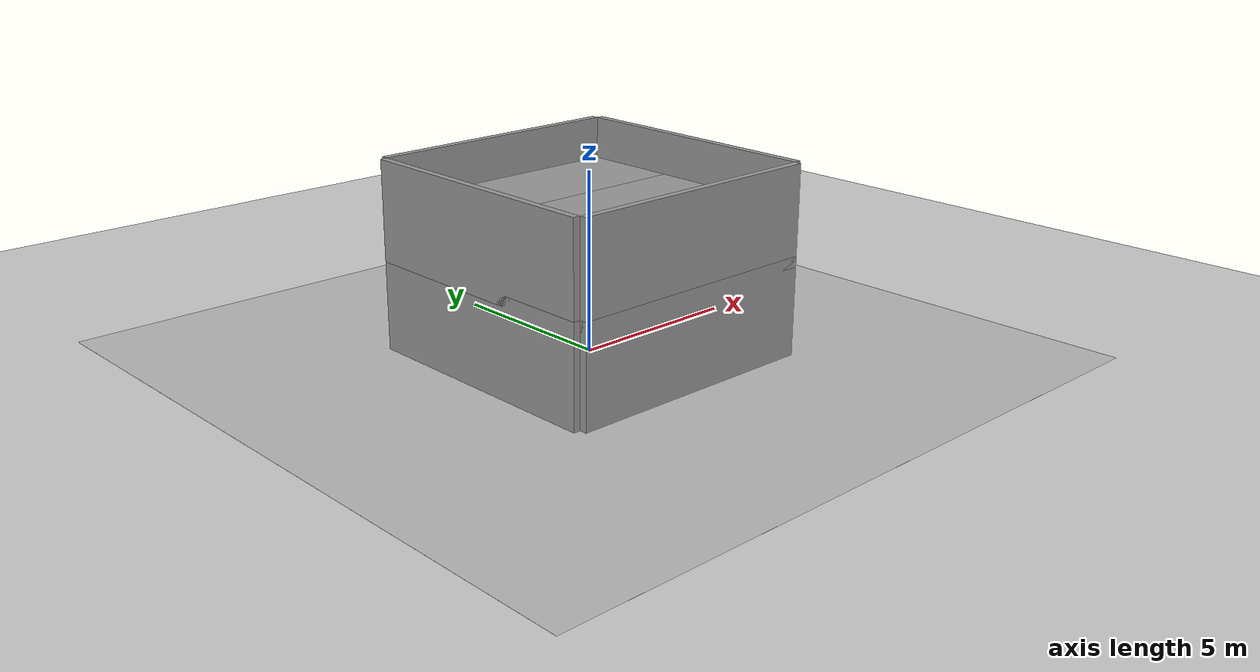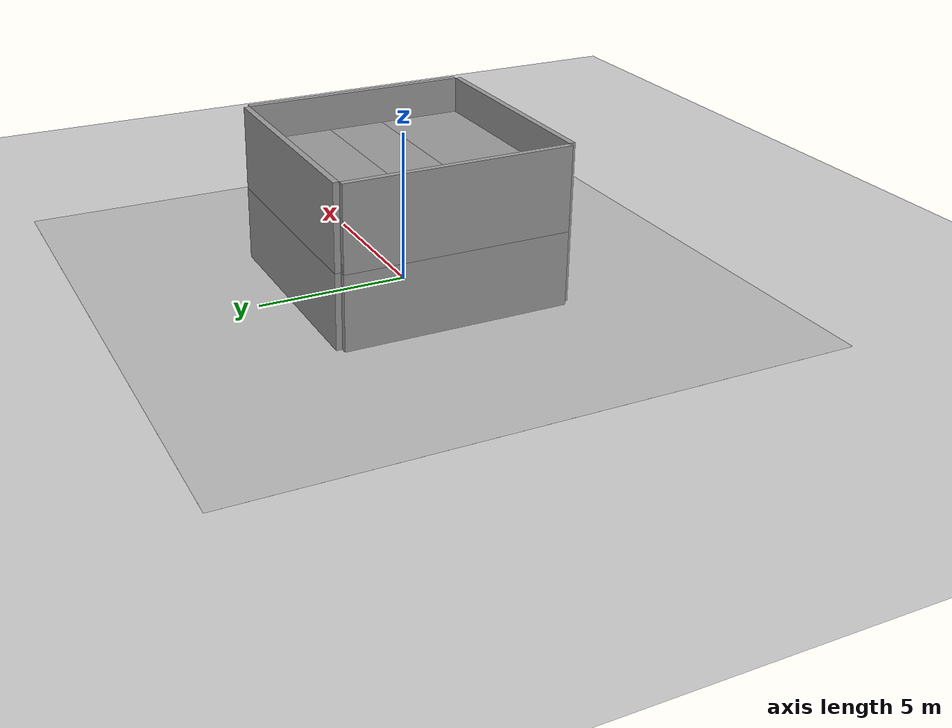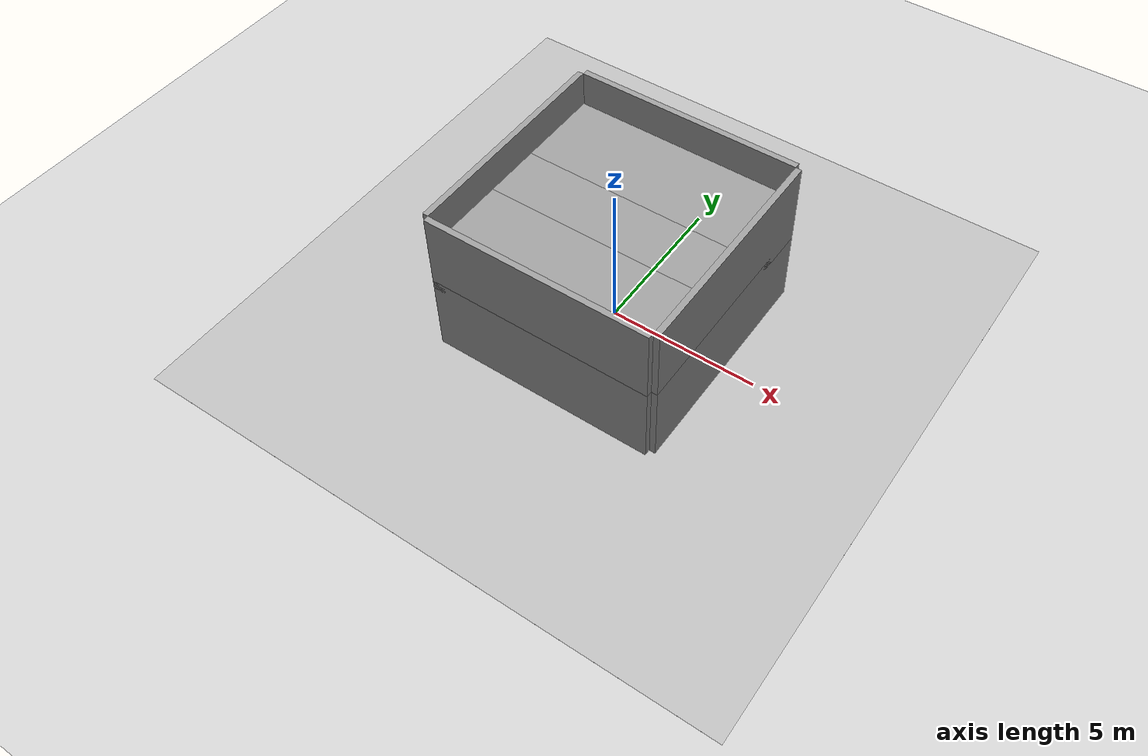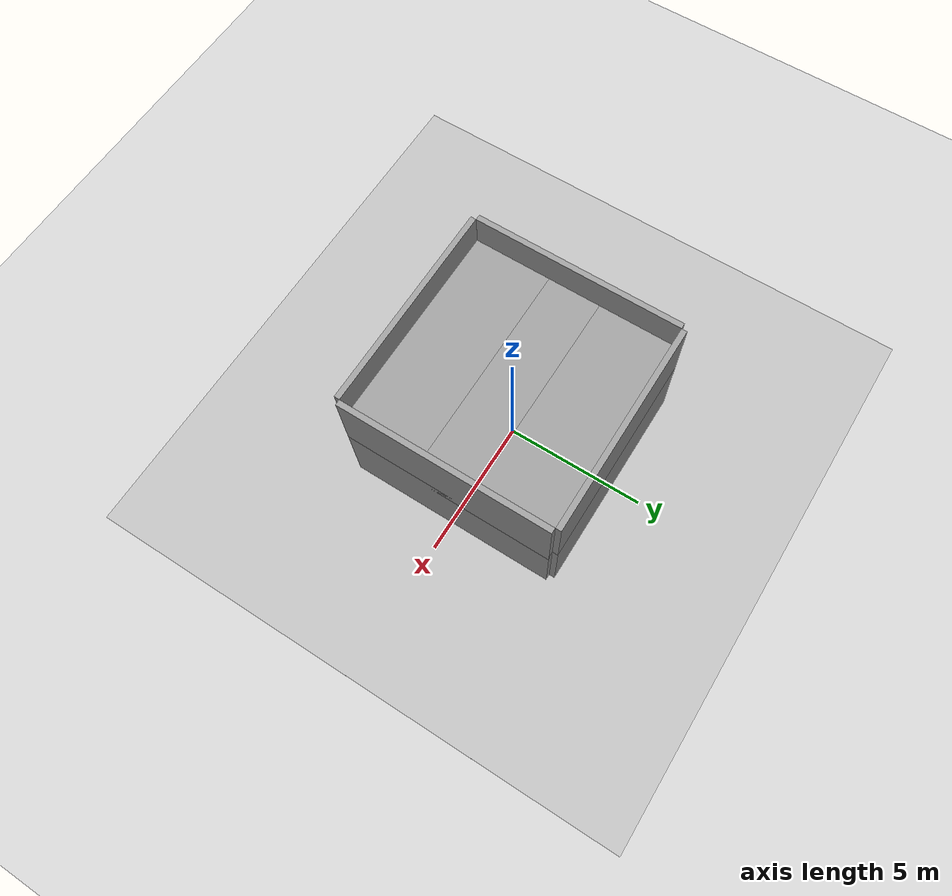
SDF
<sdf version="1.6">
 <world name="default">
  <model name="ground_plane">
   <static>1</static>
   <link name="link">
    <collision name="collision">
     <geometry><plane><normal>0 0 1</normal><size>100 100</size></plane></geometry>
     <surface><friction><ode><mu>100</mu><mu2>50</mu2></ode></friction></surface>
    </collision>
    <visual name="visual">
     <cast_shadows>0</cast_shadows>
     <geometry><plane><normal>0 0 1</normal><size>100 100</size></plane></geometry>
     <material>
      <script><uri>file://media/materials/scripts/gazebo.material</uri><name>Gazebo/Grey</name></script>
     </material>
    </visual>
   </link>
  </model>
  <gravity>0 0 -9.8</gravity>
  <magnetic_field>6e-06 2.3e-05 -4.2e-05</magnetic_field>
  <atmosphere type="adiabatic"/>
  <physics name="default_physics" default="0" type="ode">
   <max_step_size>0.001</max_step_size>
   <real_time_factor>1</real_time_factor>
   <real_time_update_rate>1000</real_time_update_rate>
  </physics>
  <scene><ambient>0.4 0.4 0.4 1</ambient><background>0.7 0.7 0.7 1</background><shadows>1</shadows></scene>
  <spherical_coordinates>
   <surface_model>EARTH_WGS84</surface_model>
   <latitude_deg>0</latitude_deg>
   <longitude_deg>0</longitude_deg>
   <elevation>0</elevation>
   <heading_deg>0</heading_deg>
  </spherical_coordinates>
  <model name="Floor_room">
   <link name="main">
    <pose>0 0 0.01 0 -0 0</pose>
    <collision name="main_Collision"><geometry><box><size>20 20 0.001</size></box></geometry></collision>
    <visual name="main_Visual">
     <geometry><box><size>20 20 0.001</size></box></geometry>
     <material>
      <script>
       <uri>model://Floor_room/materials/scripts</uri>
       <uri>model://Floor_room/materials/textures</uri>
       <name>floor_room</name>
      </script>
     </material>
    </visual>
   </link>
   <static>1</static>
  </model>
  <model name="grey_wall">
   <static>1</static>
   <link name="link">
    <pose>0 0 1.4 0 -0 0</pose>
    <collision name="collision"><geometry><box><size>7.5 0.2 2.8</size></box></geometry></collision>
    <visual name="visual">
     <cast_shadows>0</cast_shadows>
     <geometry><box><size>7.5 0.2 2.8</size></box></geometry>
     <material>
      <script>
       <uri>model://grey_wall/materials/scripts</uri>
       <uri>model://grey_wall/materials/textures</uri>
       <name>vrc/grey_wall</name>
      </script>
     </material>
    </visual>
   </link>
   <pose>0 -3.85 0 0 -0 0</pose>
  </model>
  <model name="grey_wall_0">
   <static>1</static>
   <link name="link">
    <pose>0 0 1.4 0 -0 0</pose>
    <collision name="collision"><geometry><box><size>7.5 0.2 2.8</size></box></geometry></collision>
    <visual name="visual">
     <cast_shadows>0</cast_shadows>
     <geometry><box><size>7.5 0.2 2.8</size></box></geometry>
     <material>
      <script>
       <uri>model://grey_wall/materials/scripts</uri>
       <uri>model://grey_wall/materials/textures</uri>
       <name>vrc/grey_wall</name>
      </script>
     </material>
    </visual>
   </link>
   <pose>0 3.85 0 0 -0 0</pose>
  </model>
  <model name="grey_wall_1">
   <static>1</static>
   <link name="link">
    <pose>0 0 1.4 0 -0 0</pose>
    <collision name="collision"><geometry><box><size>7.5 0.2 2.8</size></box></geometry></collision>
    <visual name="visual">
     <cast_shadows>0</cast_shadows>
     <geometry><box><size>7.5 0.2 2.8</size></box></geometry>
     <material>
      <script>
       <uri>model://grey_wall/materials/scripts</uri>
       <uri>model://grey_wall/materials/textures</uri>
       <name>vrc/grey_wall</name>
      </script>
     </material>
    </visual>
   </link>
   <pose>3.85 0 0 0 -0 1.57096</pose>
  </model>
  <model name="grey_wall_2">
   <static>1</static>
   <link name="link">
    <pose>0 0 1.4 0 -0 0</pose>
    <collision name="collision"><geometry><box><size>7.5 0.2 2.8</size></box></geometry></collision>
    <visual name="visual">
     <cast_shadows>0</cast_shadows>
     <geometry><box><size>7.5 0.2 2.8</size></box></geometry>
     <material>
      <script>
       <uri>model://grey_wall/materials/scripts</uri>
       <uri>model://grey_wall/materials/textures</uri>
       <name>vrc/grey_wall</name>
      </script>
     </material>
    </visual>
   </link>
   <pose>-3.85 0 0 0 -0 1.57096</pose>
  </model>
  <light name="user_directional_light_0" type="directional">
   <pose>1.90703 1.7116 1 0 -0 0</pose>
   <diffuse>0.5 0.5 0.5 1</diffuse>
   <specular>0.1 0.1 0.1 1</specular>
   <direction>0.1 0.1 -0.9</direction>
   <attenuation>
    <range>20</range>
    <constant>0.5</constant>
    <linear>0.01</linear>
    <quadratic>0.001</quadratic>
   </attenuation>
  </light>
  <light name="user_spot_light_0" type="spot">
   <pose>0.589804 2.02287 1 0 -0 0</pose>
   <diffuse>0.5 0.5 0.5 1</diffuse>
   <specular>0.1 0.1 0.1 1</specular>
   <direction>0 0 -1</direction>
   <attenuation>
    <range>20</range>
    <constant>0.5</constant>
    <linear>0.01</linear>
    <quadratic>0.001</quadratic>
   </attenuation>
   <cast_shadows>0</cast_shadows>
   <spot><inner_angle>0.6</inner_angle><outer_angle>1</outer_angle><falloff>1</falloff></spot>
  </light>
  <model name="grey_wall_3">
   <static>1</static>
   <link name="link">
    <pose>0 0 1.4 0 -0 0</pose>
    <collision name="collision"><geometry><box><size>7.5 0.2 2.8</size></box></geometry></collision>
    <visual name="visual">
     <cast_shadows>0</cast_shadows>
     <geometry><box><size>7.5 0.2 2.8</size></box></geometry>
     <material>
      <script>
       <uri>model://grey_wall/materials/scripts</uri>
       <uri>model://grey_wall/materials/textures</uri>
       <name>vrc/grey_wall</name>
      </script>
     </material>
    </visual>
   </link>
   <pose>0 3.75 4 1.5708 -0 0</pose>
  </model>
  <model name="grey_wall_4">
   <static>1</static>
   <link name="link">
    <pose>0 0 1.4 0 -0 0</pose>
    <collision name="collision"><geometry><box><size>7.5 0.2 2.8</size></box></geometry></collision>
    <visual name="visual">
     <cast_shadows>0</cast_shadows>
     <geometry><box><size>7.5 0.2 2.8</size></box></geometry>
     <material>
      <script>
       <uri>model://grey_wall/materials/scripts</uri>
       <uri>model://grey_wall/materials/textures</uri>
       <name>vrc/grey_wall</name>
      </script>
     </material>
    </visual>
   </link>
   <pose>0 0.95 4 1.5708 -0 0</pose>
  </model>
  <model name="grey_wall_5">
   <static>1</static>
   <link name="link">
    <pose>0 0 1.4 0 -0 0</pose>
    <collision name="collision"><geometry><box><size>7.5 0.2 2.8</size></box></geometry></collision>
    <visual name="visual">
     <cast_shadows>0</cast_shadows>
     <geometry><box><size>7.5 0.2 2.8</size></box></geometry>
     <material>
      <script>
       <uri>model://grey_wall/materials/scripts</uri>
       <uri>model://grey_wall/materials/textures</uri>
       <name>vrc/grey_wall</name>
      </script>
     </material>
    </visual>
   </link>
   <pose>0 -0.95 4 1.5708 -0 0</pose>
  </model>
  <light name="user_spot_light_0_clone" type="spot">
   <pose>-0.383938 -1.13491 1.23081 0 -0 0</pose>
   <diffuse>0.5 0.5 0.5 1</diffuse>
   <specular>0.1 0.1 0.1 1</specular>
   <direction>0 0 -1</direction>
   <attenuation>
    <range>20</range>
    <constant>0.5</constant>
    <linear>0.01</linear>
    <quadratic>0.001</quadratic>
   </attenuation>
   <cast_shadows>0</cast_shadows>
   <spot><inner_angle>0.6</inner_angle><outer_angle>1</outer_angle><falloff>1</falloff></spot>
  </light>
  <light name="user_spot_light_0_clone_1" type="spot">
   <pose>0.615848 -0.668756 1.23081 0 -0 0</pose>
   <diffuse>0.5 0.5 0.5 1</diffuse>
   <specular>0.1 0.1 0.1 1</specular>
   <direction>0 0 -1</direction>
   <attenuation>
    <range>20</range>
    <constant>0.5</constant>
    <linear>0.01</linear>
    <quadratic>0.001</quadratic>
   </attenuation>
   <cast_shadows>0</cast_shadows>
   <spot><inner_angle>0.6</inner_angle><outer_angle>1</outer_angle><falloff>1</falloff></spot>
  </light>
  <light name="user_spot_light_0_clone_0" type="spot">
   <pose>-0.706863 -0.391915 1.23081 0 -0 0</pose>
   <diffuse>0.498039 0.498039 0.498039 1</diffuse>
   <specular>0.0980392 0.0980392 0.0980392 1</specular>
   <direction>0 0 -1</direction>
   <attenuation>
    <range>20</range>
    <constant>0.5</constant>
    <linear>0.01</linear>
    <quadratic>0.001</quadratic>
   </attenuation>
   <cast_shadows>0</cast_shadows>
   <spot><inner_angle>0.6</inner_angle><outer_angle>1</outer_angle><falloff>1</falloff></spot>
  </light>
  <model name="grey_wall_clone">
   <static>1</static>
   <link name="link">
    <pose>0 0 1.4 0 -0 0</pose>
    <collision name="collision"><geometry><box><size>7.5 0.2 2.8</size></box></geometry></collision>
    <visual name="visual">
     <cast_shadows>0</cast_shadows>
     <geometry><box><size>7.5 0.2 2.8</size></box></geometry>
     <material>
      <script>
       <uri>model://grey_wall/materials/scripts</uri>
       <uri>model://grey_wall/materials/textures</uri>
       <name>vrc/grey_wall</name>
      </script>
     </material>
    </visual>
   </link>
   <pose>0 -3.85 2.5 0 -0 0</pose>
  </model>
  <model name="grey_wall_1_clone">
   <static>1</static>
   <link name="link">
    <pose>0 0 1.4 0 -0 0</pose>
    <collision name="collision"><geometry><box><size>7.5 0.2 2.8</size></box></geometry></collision>
    <visual name="visual">
     <cast_shadows>0</cast_shadows>
     <geometry><box><size>7.5 0.2 2.8</size></box></geometry>
     <material>
      <script>
       <uri>model://grey_wall/materials/scripts</uri>
       <uri>model://grey_wall/materials/textures</uri>
       <name>vrc/grey_wall</name>
      </script>
     </material>
    </visual>
   </link>
   <pose>3.85 0 2.5 0 -0 1.57096</pose>
  </model>
  <model name="grey_wall_0_clone">
   <static>1</static>
   <link name="link">
    <pose>0 0 1.4 0 -0 0</pose>
    <collision name="collision"><geometry><box><size>7.5 0.2 2.8</size></box></geometry></collision>
    <visual name="visual">
     <cast_shadows>0</cast_shadows>
     <geometry><box><size>7.5 0.2 2.8</size></box></geometry>
     <material>
      <script>
       <uri>model://grey_wall/materials/scripts</uri>
       <uri>model://grey_wall/materials/textures</uri>
       <name>vrc/grey_wall</name>
      </script>
     </material>
    </visual>
   </link>
   <pose>0 3.85 2.5 0 -0 0</pose>
  </model>
  <model name="grey_wall_2_clone">
   <static>1</static>
   <link name="link">
    <pose>0 0 1.4 0 -0 0</pose>
    <collision name="collision"><geometry><box><size>7.5 0.2 2.8</size></box></geometry></collision>
    <visual name="visual">
     <cast_shadows>0</cast_shadows>
     <geometry><box><size>7.5 0.2 2.8</size></box></geometry>
     <material>
      <script>
       <uri>model://grey_wall/materials/scripts</uri>
       <uri>model://grey_wall/materials/textures</uri>
       <name>vrc/grey_wall</name>
      </script>
     </material>
    </visual>
   </link>
   <pose>-3.85 0 2.5 0 -0 1.57096</pose>
  </model>
  <audio><device>default</device></audio>
 </world>
</sdf>
